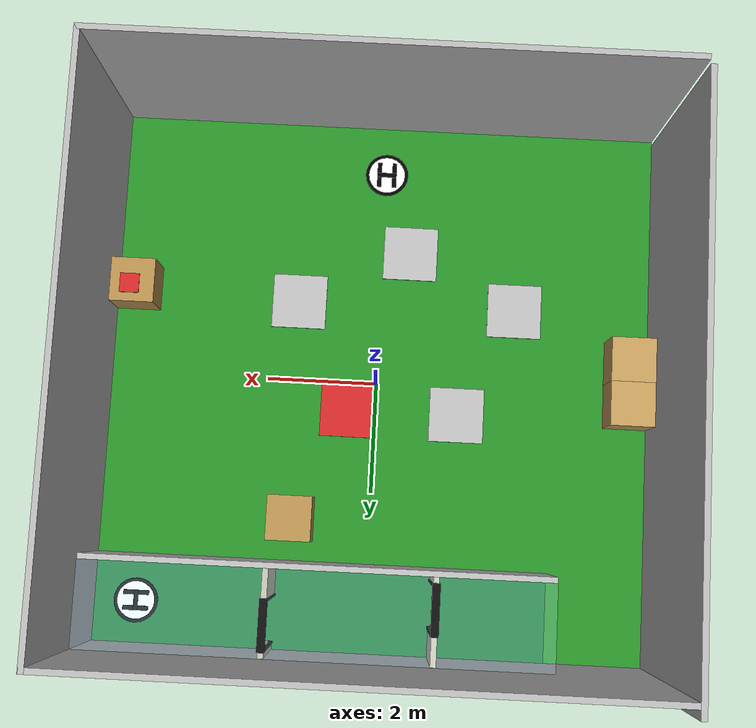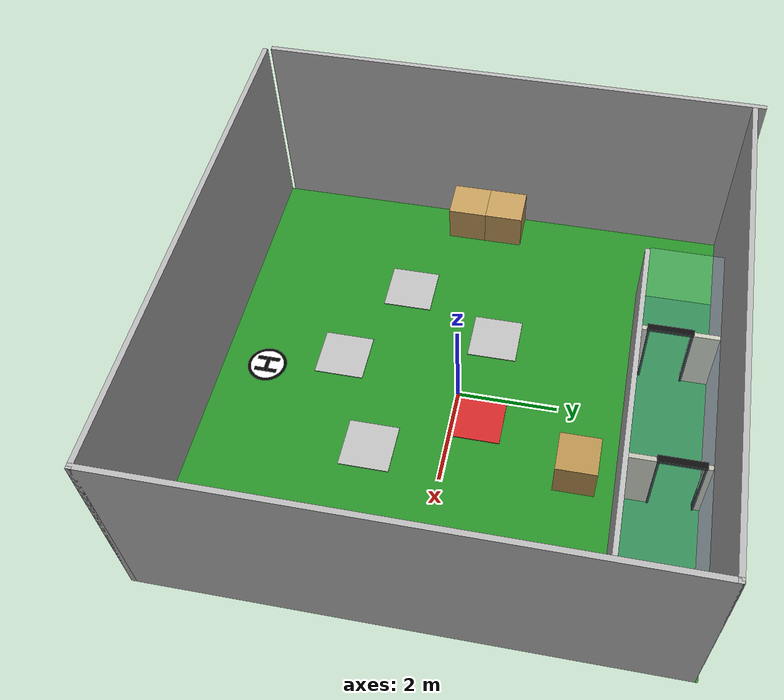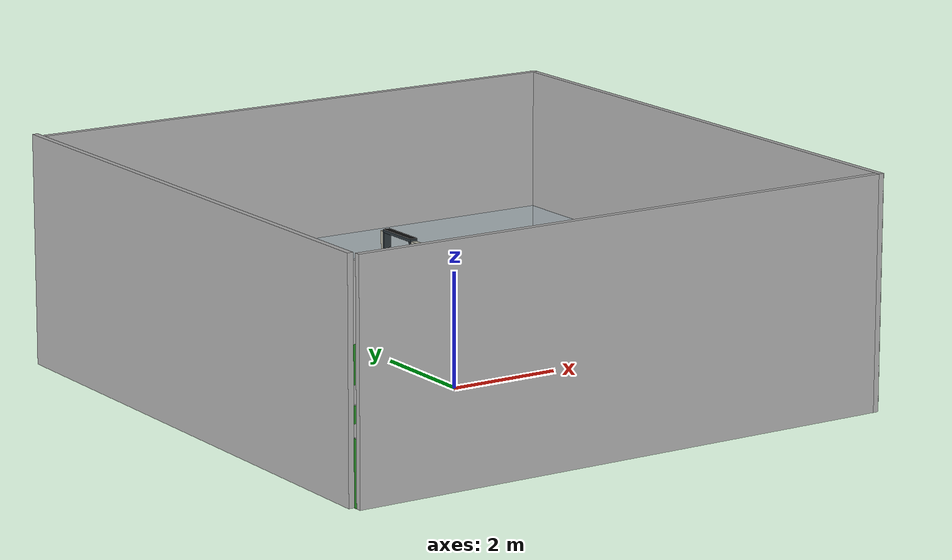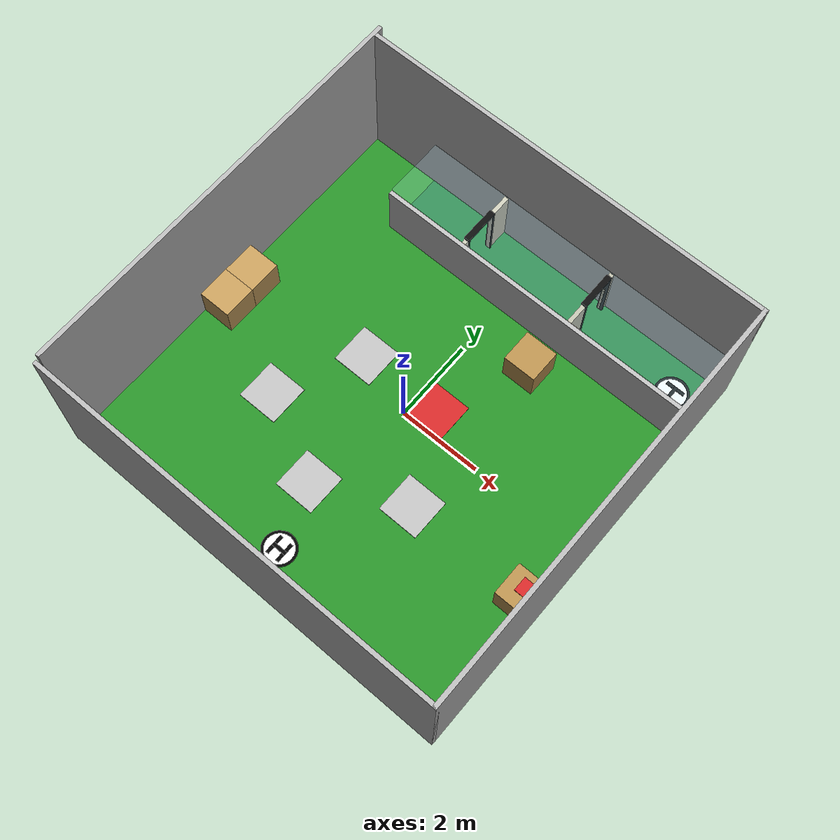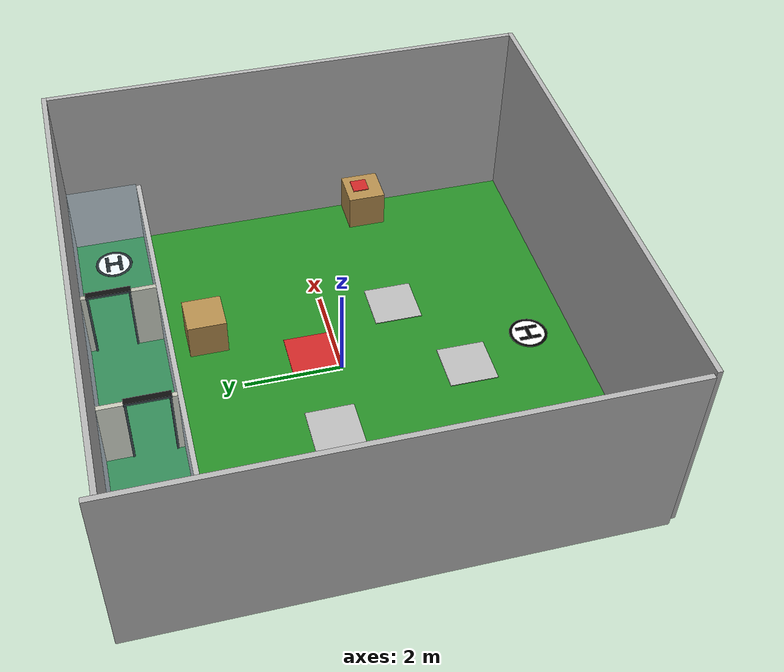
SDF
<sdf version="1.7">
 <world name="RoboCup_sim">
  <light name="sun" type="directional">
   <pose>0 0 10 0 -0 0</pose>
   <diffuse>0.85 0.85 0.85 1</diffuse>
   <specular>0.2 0.2 0.2 1</specular>
   <attenuation>
    <range>1000</range>
    <constant>0.9</constant>
    <linear>0.01</linear>
    <quadratic>0.001</quadratic>
   </attenuation>
   <direction>-0.5 0.1 -0.9</direction>
   <spot><inner_angle>0</inner_angle><outer_angle>0</outer_angle><falloff>0</falloff></spot>
  </light>
  <gravity>0 0 -9.8</gravity>
  <magnetic_field>6e-06 2.3e-05 -4.2e-05</magnetic_field>
  <atmosphere type="adiabatic"/>
  <physics type="ode">
   <max_step_size>0.001</max_step_size>
   <real_time_factor>1</real_time_factor>
   <real_time_update_rate>1000</real_time_update_rate>
  </physics>
  <scene><ambient>0.5 0.5 0.5 1</ambient><background>0.8 0.85 0.9 1</background><shadows>1</shadows></scene>
  <spherical_coordinates>
   <surface_model>EARTH_WGS84</surface_model>
   <latitude_deg>0</latitude_deg>
   <longitude_deg>0</longitude_deg>
   <elevation>0</elevation>
   <heading_deg>0</heading_deg>
  </spherical_coordinates>
  <model name="arena_ground">
   <static>1</static>
   <link name="link">
    <collision name="collision">
     <pose>0 0 0.001 0 -0 0</pose>
     <geometry><box><size>10 10 0.002</size></box></geometry>
     <surface><friction><ode><mu>100</mu><mu2>50</mu2></ode></friction></surface>
    </collision>
    <visual name="visual">
     <geometry><box><size>10 10 0.002</size></box></geometry>
     <material><diffuse>0.15 0.55 0.15 1</diffuse><specular>0.1 0.1 0.1 1</specular></material>
    </visual>
   </link>
   <pose>-0.000954 0.050039 0 0 -0 0</pose>
  </model>
  <model name="wall_south">
   <static>1</static>
   <link name="link">
    <collision name="collision"><geometry><box><size>10 0.1 4</size></box></geometry></collision>
    <visual name="visual">
     <geometry><box><size>10 0.1 4</size></box></geometry>
     <material><diffuse>0.7 0.7 0.7 1</diffuse></material>
    </visual>
   </link>
   <pose>0 -4.95 2 0 -0 0</pose>
  </model>
  <model name="wall_north">
   <static>1</static>
   <link name="link">
    <collision name="collision"><geometry><box><size>10 0.1 4</size></box></geometry></collision>
    <visual name="visual">
     <geometry><box><size>10 0.1 4</size></box></geometry>
     <material><diffuse>0.7 0.7 0.7 1</diffuse></material>
    </visual>
   </link>
   <pose>0 4.95 2 0 -0 0</pose>
  </model>
  <model name="wall_west">
   <static>1</static>
   <link name="link">
    <collision name="collision"><geometry><box><size>0.1 10 4</size></box></geometry></collision>
    <visual name="visual">
     <geometry><box><size>0.1 10 4</size></box></geometry>
     <material><diffuse>0.7 0.7 0.7 1</diffuse></material>
    </visual>
   </link>
   <pose>-5.05016 0.164593 2 0 -0 0</pose>
  </model>
  <model name="wall_east">
   <static>1</static>
   <link name="link">
    <collision name="collision"><geometry><box><size>0.1 10 4</size></box></geometry></collision>
    <visual name="visual">
     <geometry><box><size>0.1 10 4</size></box></geometry>
     <material><diffuse>0.7 0.7 0.7 1</diffuse></material>
    </visual>
   </link>
   <pose>4.95 0 2 0 -0 0</pose>
  </model>
  <model name="takeoff_zone">
   <static>1</static>
   <link name="link">
    <visual name="outer_circle">
     <geometry><cylinder><radius>0.4</radius><length>0.01</length></cylinder></geometry>
     <material><diffuse>0 0 0 1</diffuse></material>
    </visual>
    <visual name="inner_white">
     <pose>0 0 0.001 0 -0 0</pose>
     <geometry><cylinder><radius>0.34</radius><length>0.01</length></cylinder></geometry>
     <material><diffuse>1 1 1 1</diffuse></material>
    </visual>
    <visual name="h_left">
     <pose>-0.14 0 0.014 0 -0 0</pose>
     <geometry><box><size>0.08 0.46 0.012</size></box></geometry>
     <material><diffuse>0 0 0 1</diffuse></material>
    </visual>
    <visual name="h_right">
     <pose>0.14 0 0.014 0 -0 0</pose>
     <geometry><box><size>0.08 0.46 0.012</size></box></geometry>
     <material><diffuse>0 0 0 1</diffuse></material>
    </visual>
    <visual name="h_middle">
     <pose>0 0 0.015 0 -0 0</pose>
     <geometry><box><size>0.36 0.08 0.012</size></box></geometry>
     <material><diffuse>0 0 0 1</diffuse></material>
    </visual>
   </link>
   <pose>0 -4 0.005 0 -0 0</pose>
  </model>
  <model name="landing_zone">
   <static>1</static>
   <link name="link">
    <collision name="collision">
     <geometry><cylinder><radius>0.4</radius><length>0.01</length></cylinder></geometry>
     <surface><friction><ode><mu>100</mu><mu2>50</mu2></ode></friction></surface>
    </collision>
    <visual name="outer_circle">
     <geometry><cylinder><radius>0.4</radius><length>0.01</length></cylinder></geometry>
     <material><diffuse>0 0 0 1</diffuse></material>
    </visual>
    <visual name="inner_white">
     <pose>0 0 0.001 0 -0 0</pose>
     <geometry><cylinder><radius>0.34</radius><length>0.01</length></cylinder></geometry>
     <material><diffuse>1 1 1 1</diffuse></material>
    </visual>
    <visual name="h_left">
     <pose>0 0.14 0.014 0 -0 0</pose>
     <geometry><box><size>0.46 0.08 0.012</size></box></geometry>
     <material><diffuse>0 0 0 1</diffuse></material>
    </visual>
    <visual name="h_right">
     <pose>0 -0.14 0.014 0 -0 0</pose>
     <geometry><box><size>0.46 0.08 0.012</size></box></geometry>
     <material><diffuse>0 0 0 1</diffuse></material>
    </visual>
    <visual name="h_middle">
     <pose>0 0 0.015 0 -0 0</pose>
     <geometry><box><size>0.08 0.36 0.012</size></box></geometry>
     <material><diffuse>0 0 0 1</diffuse></material>
    </visual>
   </link>
   <pose>4.15 4.15 0.005 0 -0 0</pose>
  </model>
  <model name="target_tent">
   <static>1</static>
   <link name="link">
    <collision name="collision"><geometry><box><size>1 1 0.02</size></box></geometry></collision>
    <visual name="visual">
     <geometry><box><size>1 1 0.02</size></box></geometry>
     <material>
      <script>
       <uri>model://target_tent/materials/scripts</uri>
       <uri>model://target_tent/materials/textures</uri>
       <name>Mark/target_tent</name>
      </script>
     </material>
    </visual>
   </link>
   <pose>-2.50324 -1.49733 0.009999 0 -0 1.57128</pose>
  </model>
  <model name="target_bunker">
   <static>1</static>
   <link name="link">
    <collision name="collision"><geometry><box><size>1 1 0.02</size></box></geometry></collision>
    <visual name="visual">
     <geometry><box><size>1 1 0.02</size></box></geometry>
     <material>
      <script>
       <uri>model://target_bunker/materials/scripts</uri>
       <uri>model://target_bunker/materials/textures</uri>
       <name>Mark/target_bunker</name>
      </script>
     </material>
    </visual>
   </link>
   <pose>-1.50494 0.503145 0.01 0 -0 1.57107</pose>
  </model>
  <model name="target_bridge">
   <static>1</static>
   <link name="link">
    <collision name="collision"><geometry><box><size>1 1 0.02</size></box></geometry></collision>
    <visual name="visual">
     <geometry><box><size>1 1 0.02</size></box></geometry>
     <material>
      <script>
       <uri>model://target_bridge/materials/scripts</uri>
       <uri>model://target_bridge/materials/textures</uri>
       <name>Mark/target_bridge</name>
      </script>
     </material>
    </visual>
   </link>
   <pose>-0.518962 -2.49669 0.01 0 -0 1.56665</pose>
  </model>
  <model name="target_tank">
   <static>1</static>
   <link name="link">
    <collision name="collision"><geometry><box><size>1 1 0.02</size></box></geometry></collision>
    <visual name="visual">
     <geometry><box><size>1 1 0.02</size></box></geometry>
     <material>
      <script>
       <uri>model://target_tank/materials/scripts</uri>
       <uri>model://target_tank/materials/textures</uri>
       <name>Mark/target_tank</name>
      </script>
     </material>
    </visual>
   </link>
   <pose>1.51 -1.48673 0.01 0 -0 1.56814</pose>
  </model>
  <model name="target_red_cross">
   <static>1</static>
   <link name="link">
    <collision name="collision"><geometry><box><size>0.35 0.35 0.02</size></box></geometry></collision>
    <visual name="visual">
     <geometry><box><size>0.35 0.35 0.02</size></box></geometry>
     <material>
      <script>
       <uri>model://target_red_cross/materials/scripts</uri>
       <uri>model://target_red_cross/materials/textures</uri>
       <name>Mark/target_red_cross</name>
      </script>
     </material>
    </visual>
   </link>
   <pose>4.53842 -1.52631 0.81 0 -0 0</pose>
  </model>
  <model name="target_armored_vehicle">
   <static>1</static>
   <link name="link">
    <collision name="collision"><geometry><box><size>1 1 0.02</size></box></geometry></collision>
    <visual name="visual">
     <geometry><box><size>1 1 0.02</size></box></geometry>
     <material>
      <script>
       <uri>model://target_armored_vehicle/materials/scripts</uri>
       <uri>model://target_armored_vehicle/materials/textures</uri>
       <name>Mark/target_armored_vehicle</name>
      </script>
     </material>
    </visual>
   </link>
   <pose>0.504914 0.501136 0.01 0 -0 1.56761</pose>
  </model>
  <model name="box_1">
   <static>1</static>
   <link name="link">
    <collision name="collision"><geometry><box><size>0.8 0.8 0.8</size></box></geometry></collision>
    <visual name="visual">
     <geometry><box><size>0.8 0.8 0.8</size></box></geometry>
     <material><diffuse>0.75 0.6 0.35 1</diffuse></material>
    </visual>
   </link>
   <pose>-4.60108 -0.589689 0.4 0 -0 0</pose>
  </model>
  <model name="box_2">
   <static>1</static>
   <link name="link">
    <collision name="collision"><geometry><box><size>0.8 0.8 0.8</size></box></geometry></collision>
    <visual name="visual">
     <geometry><box><size>0.8 0.8 0.8</size></box></geometry>
     <material><diffuse>0.75 0.6 0.35 1</diffuse></material>
    </visual>
   </link>
   <pose>-4.60281 0.209171 0.4 0 -0 0</pose>
  </model>
  <model name="box_3">
   <static>1</static>
   <link name="link">
    <collision name="collision"><geometry><box><size>0.8 0.8 0.8</size></box></geometry></collision>
    <visual name="visual">
     <geometry><box><size>0.8 0.8 0.8</size></box></geometry>
     <material><diffuse>0.7 0.55 0.3 1</diffuse></material>
    </visual>
   </link>
   <pose>4.49547 -1.594 0.4 0 -0 0</pose>
  </model>
  <model name="box_4">
   <static>1</static>
   <link name="link">
    <collision name="collision"><geometry><box><size>0.8 0.8 0.8</size></box></geometry></collision>
    <visual name="visual">
     <geometry><box><size>0.8 0.8 0.8</size></box></geometry>
     <material><diffuse>0.7 0.55 0.3 1</diffuse></material>
    </visual>
   </link>
   <pose>1.41721 2.53951 0.4 0 -0 0</pose>
  </model>
  <model name="b_corridor_floor">
   <static>1</static>
   <link name="link">
    <visual name="visual">
     <geometry><box><size>8.2 1.5 0.006</size></box></geometry>
     <material><diffuse>0.08 0.45 0.18 1</diffuse></material>
    </visual>
   </link>
   <pose>0.85 4.15 0.003 0 -0 0</pose>
  </model>
  <model name="b_corridor_ceiling">
   <static>1</static>
   <link name="link">
    <collision name="collision"><geometry><box><size>8.2 1.5 0.04</size></box></geometry></collision>
    <visual name="transparent_visual">
     <transparency>0.92</transparency>
     <cast_shadows>false</cast_shadows>
     <geometry><box><size>8.2 1.5 0.04</size></box></geometry>
     <material>
      <ambient>0.7 0.9 1 0.08</ambient>
      <diffuse>0.7 0.9 1 0.08</diffuse>
      <specular>0.1 0.1 0.1 0.08</specular>
     </material>
    </visual>
   </link>
   <pose>0.85 4.15 1.52 0 -0 0</pose>
  </model>
  <model name="b_corridor_inner_wall">
   <static>1</static>
   <link name="link">
    <collision name="collision"><geometry><box><size>8.2 0.1 1.5</size></box></geometry></collision>
    <visual name="visual">
     <geometry><box><size>8.2 0.1 1.5</size></box></geometry>
     <material><diffuse>0.72 0.72 0.72 1</diffuse></material>
    </visual>
   </link>
   <pose>0.85 3.35 0.75 0 -0 0</pose>
  </model>
  <model name="obstacle_wall_1_left">
   <static>1</static>
   <link name="link">
    <collision name="collision"><geometry><box><size>0.1 0.15 1.5</size></box></geometry></collision>
    <visual name="visual">
     <geometry><box><size>0.1 0.15 1.5</size></box></geometry>
     <material><diffuse>0.8 0.75 0.65 1</diffuse></material>
    </visual>
   </link>
   <pose>-1.2 3.475 0.75 0 -0 0</pose>
  </model>
  <model name="obstacle_wall_1_right">
   <static>1</static>
   <link name="link">
    <collision name="collision"><geometry><box><size>0.1 0.55 1.5</size></box></geometry></collision>
    <visual name="visual">
     <geometry><box><size>0.1 0.55 1.5</size></box></geometry>
     <material><diffuse>0.8 0.75 0.65 1</diffuse></material>
    </visual>
   </link>
   <pose>-1.2 4.625 0.75 0 -0 0</pose>
  </model>
  <model name="obstacle_wall_1_door_top">
   <static>1</static>
   <link name="link">
    <visual name="door_lintel">
     <geometry><box><size>0.14 0.9 0.06</size></box></geometry>
     <material><diffuse>0.05 0.05 0.05 1</diffuse></material>
    </visual>
    <visual name="door_jamb_inner">
     <pose>0 -0.42 -0.77 0 -0 0</pose>
     <geometry><box><size>0.14 0.04 1.5</size></box></geometry>
     <material><diffuse>0.05 0.05 0.05 1</diffuse></material>
    </visual>
    <visual name="door_jamb_outer">
     <pose>0 0.42 -0.77 0 -0 0</pose>
     <geometry><box><size>0.14 0.04 1.5</size></box></geometry>
     <material><diffuse>0.05 0.05 0.05 1</diffuse></material>
    </visual>
   </link>
   <pose>-1.2 3.95 1.52 0 -0 0</pose>
  </model>
  <model name="obstacle_wall_2_left">
   <static>1</static>
   <link name="link">
    <collision name="collision"><geometry><box><size>0.1 0.55 1.5</size></box></geometry></collision>
    <visual name="visual">
     <geometry><box><size>0.1 0.55 1.5</size></box></geometry>
     <material><diffuse>0.75 0.7 0.6 1</diffuse></material>
    </visual>
   </link>
   <pose>1.7 3.675 0.75 0 -0 0</pose>
  </model>
  <model name="obstacle_wall_2_right">
   <static>1</static>
   <link name="link">
    <collision name="collision"><geometry><box><size>0.1 0.15 1.5</size></box></geometry></collision>
    <visual name="visual">
     <geometry><box><size>0.1 0.15 1.5</size></box></geometry>
     <material><diffuse>0.75 0.7 0.6 1</diffuse></material>
    </visual>
   </link>
   <pose>1.7 4.825 0.75 0 -0 0</pose>
  </model>
  <model name="obstacle_wall_2_door_top">
   <static>1</static>
   <link name="link">
    <visual name="door_lintel">
     <geometry><box><size>0.14 0.9 0.06</size></box></geometry>
     <material><diffuse>0.05 0.05 0.05 1</diffuse></material>
    </visual>
    <visual name="door_jamb_inner">
     <pose>0 -0.42 -0.77 0 -0 0</pose>
     <geometry><box><size>0.14 0.04 1.5</size></box></geometry>
     <material><diffuse>0.05 0.05 0.05 1</diffuse></material>
    </visual>
    <visual name="door_jamb_outer">
     <pose>0 0.42 -0.77 0 -0 0</pose>
     <geometry><box><size>0.14 0.04 1.5</size></box></geometry>
     <material><diffuse>0.05 0.05 0.05 1</diffuse></material>
    </visual>
   </link>
   <pose>1.7 4.35 1.52 0 -0 0</pose>
  </model>
  <plugin name="ActorPosesPlugin" filename="libActorPosesPlugin.so"/>
 </world>
</sdf>
